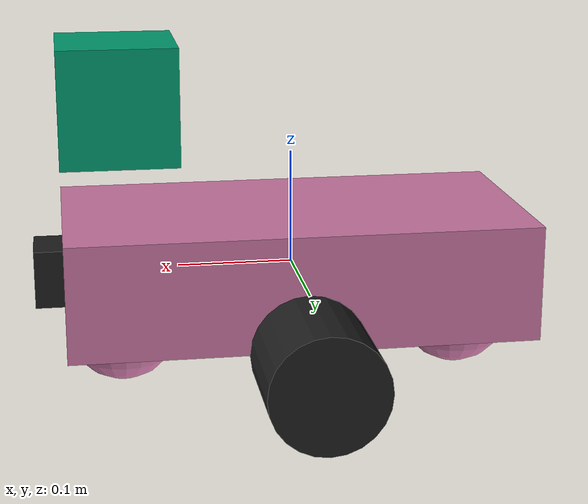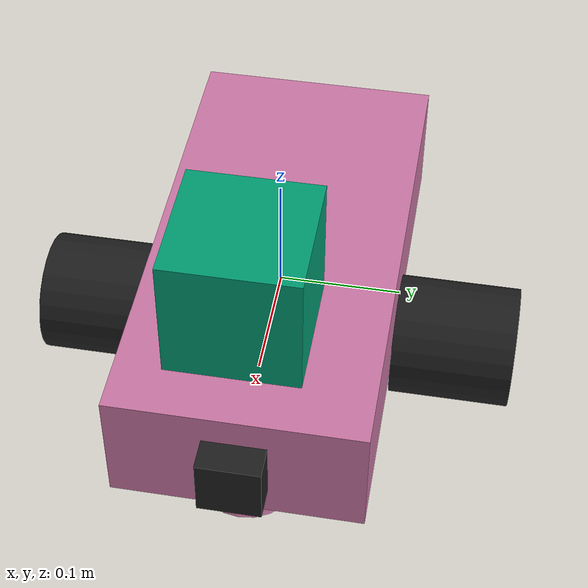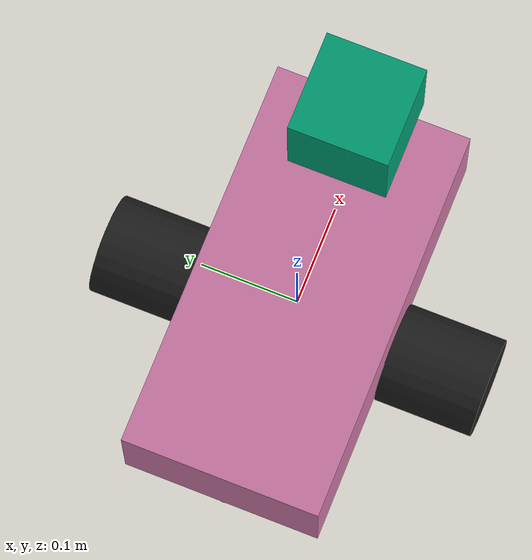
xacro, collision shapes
<?xml version='1.0'?>

<robot name="my_robot" xmlns:xacro="http://www.ros.org/wiki/xacro">

  <xacro:include filename="$(find my_robot)/urdf/my_robot.gazebo" />

  <gazebo reference="left_wheel">
    <material>Gazebo/Black</material>
  </gazebo>

  <gazebo reference="right_wheel">
    <material>Gazebo/Black</material>
  </gazebo>

  <gazebo reference="camera">
    <material>Gazebo/Black</material>
  </gazebo>

  <link name="robot_footprint"></link>

  <joint name="robot_footprint_joint" type="fixed">
    <origin xyz="0 0 0" rpy="0 0 0" />
    <parent link="robot_footprint"/>
    <child link="chassis" />
  </joint>

  <joint type="continuous" name="left_wheel_hinge">
    <origin xyz="0 0.15 -0.05" rpy="0 0 0"/>
    <child link="left_wheel"/>
    <parent link="chassis"/>
    <axis xyz="0 1 0" rpy="0 0 0"/>
    <limit effort="10000" velocity="1000"/>
    <dynamics damping="1.0" friction="1.0"/>
  </joint>

  <joint type="continuous" name="right_wheel_hinge">
    <origin xyz="0 -0.15 -0.05" rpy="0 0 0"/>
    <child link="right_wheel"/>
    <parent link="chassis"/>
    <axis xyz="0 1 0" rpy="0 0 0"/>
    <limit effort="10000" velocity="1000"/>
    <dynamics damping="1.0" friction="1.0"/>
  </joint>

  <joint type="fixed" name="camera_joint">
    <origin xyz="0.2 0 0" rpy="0 0 0"/>
    <child link="camera"/>
    <parent link="chassis"/>
    <axis xyz="0 1 0" rpy="0 0 0"/>
  </joint>

  <joint type="fixed" name="hokuyo_joint">
    <origin xyz="0.15 0 .15" rpy="0 0 0"/>
    <child link="hokuyo"/>
    <parent link="chassis"/>
    <axis xyz="0 1 0" rpy="0 0 0"/>
  </joint>

  <joint name="camera_optical_joint" type="fixed">
    <origin xyz="0 0 0" rpy="-1.5707 0 -1.5707"/>
    <parent link="camera"/>
    <child link="camera_link_optical"/>
  </joint>

  <link name="camera_link_optical">
  </link>

  <link name='hokuyo'>
    <inertial>
      <mass value="1e-5"/>
      <origin xyz="0.0 0 0" rpy=" 0 0 0"/>
      <inertia
          ixx="1e-6" ixy="0" ixz="0"
          iyy="1e-6" iyz="0"
          izz="1e-6"
      />
    </inertial>

    <collision name='collision_hokuyo'>
      <origin xyz="0.0 0 0" rpy=" 0 0 0"/>
      <geometry>
        <box size=".1 .1 .1" />
      </geometry>
    </collision>

    <visual name='hokuyo_visual'>
      <origin xyz="0 0 0" rpy="0 0 0"/>
      <geometry>
        <mesh filename="package://my_robot/meshes/hokuyo.dae"/>
      </geometry>
    </visual>

  </link>

  <link name='camera'>
    <inertial>
      <mass value="0.1"/>
      <origin xyz="0.0 0 0" rpy=" 0 0 0"/>
      <inertia
          ixx="1e-6" ixy="0" ixz="0"
          iyy="1e-6" iyz="0"
          izz="1e-6"
      />
      <box_inertia m="0.1" x="0.05" y="0.05" z="0.05" />
    </inertial>

    <collision name='collision_camera'>
      <origin xyz="0.0 0 0" rpy=" 0 0 0"/>
      <geometry>
        <box size=".05 .05 .05" />
      </geometry>
    </collision>

    <visual name='camera_visual'>
      <origin xyz="0.0 0 0" rpy=" 0 0 0"/>
      <geometry>
        <box size=".05 .05 .05" />
      </geometry>
    </visual>

  </link>

  <link name='left_wheel'>
    <inertial>
      <mass value="5.0"/>
      <origin xyz="0.0 0 -0.05" rpy=" 0 1.5707 1.5707"/>
      <inertia
          ixx="0.1" ixy="0" ixz="0"
          iyy="0.1" iyz="0"
          izz="0.1"
      />
    </inertial>

    <collision name='collision_left_wheel'>
      <origin xyz="0.0 0 0" rpy=" 0 1.5707 1.5707"/>
      <geometry>
        <cylinder radius=".05" length=".1" />
      </geometry>
    </collision>

    <visual name='left_wheel_visual'>
      <origin xyz="0.0 0 0" rpy=" 0 1.5707 1.5707"/>
      <geometry>
        <cylinder radius=".05" length=".1" />
      </geometry>
    </visual>

  </link>

  <link name='right_wheel'>
    <inertial>
      <mass value="5.0"/>
      <origin xyz="0.0 0 -0.05" rpy=" 0 1.5707 1.5707"/>
      <inertia
          ixx="0.1" ixy="0" ixz="0"
          iyy="0.1" iyz="0"
          izz="0.1"
      />
    </inertial>

    <collision name='collision_right_wheel'>
      <origin xyz="0.0 0 0" rpy=" 0 1.5707 1.5707"/>
      <geometry>
        <cylinder radius=".05" length=".1" />
      </geometry>
    </collision>

    <visual name='right_wheel_visual'>
      <origin xyz="0.0 0 0" rpy=" 0 1.5707 1.5707"/>
      <geometry>
        <cylinder radius=".05" length=".1" />
      </geometry>
    </visual>

  </link>

  <link name='chassis'>
    <pose>0 0 0.1 0 0 0</pose>

    <inertial>
      <mass value="15.0"/>
      <origin xyz="0.0 0 0" rpy=" 0 0 0"/>
      <inertia
          ixx="0.1" ixy="0" ixz="0"
          iyy="0.1" iyz="0"
          izz="0.1"
      />
    </inertial>

    <collision name='collision'>
      <origin xyz="0 0 0" rpy=" 0 0 0"/>
      <geometry>
        <box size=".4 .2 .1"/>
      </geometry>
    </collision>

    <visual name='chassis_visual'>
      <origin xyz="0 0 -0.1" rpy=" 0 0 1.57"/>
      <geometry>
        <mesh filename="package://my_robot/mars_rover/meshes/rover.dae" scale=".5 .5 .5"/>
      </geometry>
    </visual>

    <collision name='back_caster_collision'>
      <origin xyz="-0.15 0 -0.05" rpy=" 0 0 0"/>
      <geometry>
        <sphere radius="0.0499"/>
      </geometry>
    </collision>

    <collision name='front_caster_collision'>
      <origin xyz="0.15 0 -0.05" rpy=" 0 0 0"/>
      <geometry>
        <sphere radius="0.0499"/>
      </geometry>
    </collision>

  </link>

</robot>
